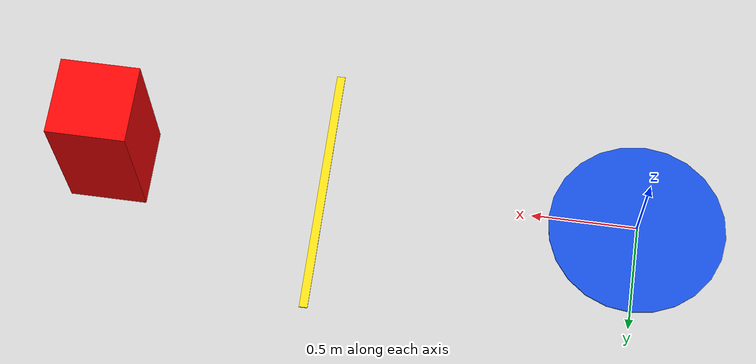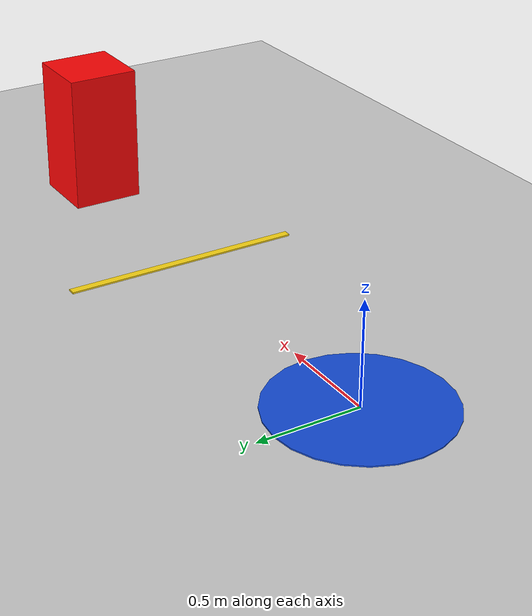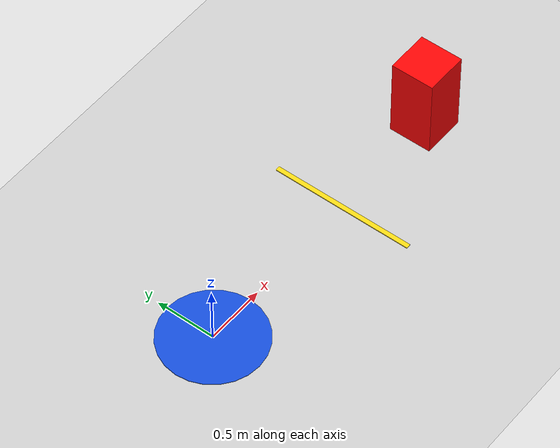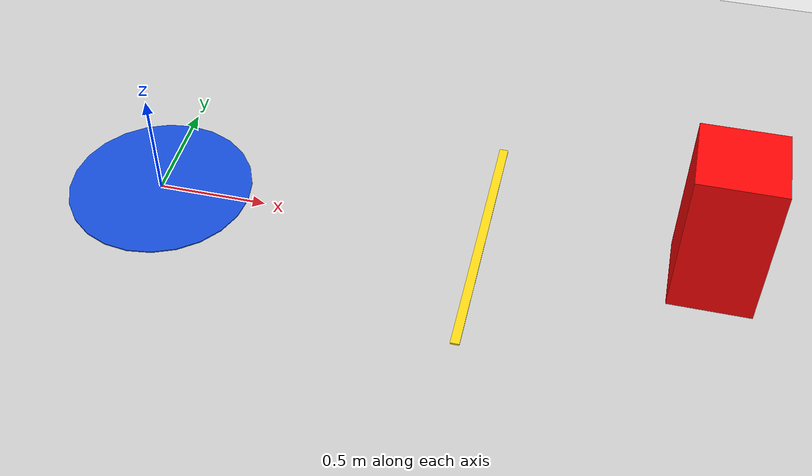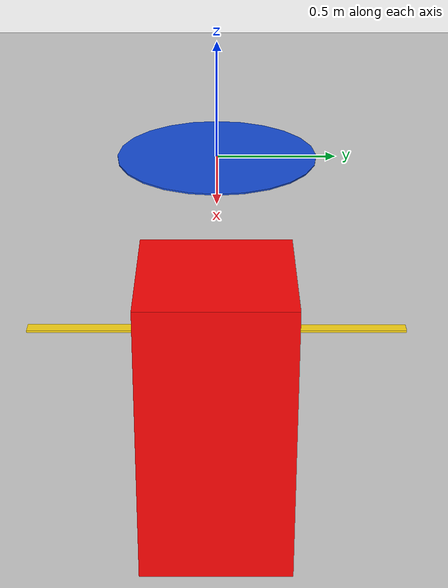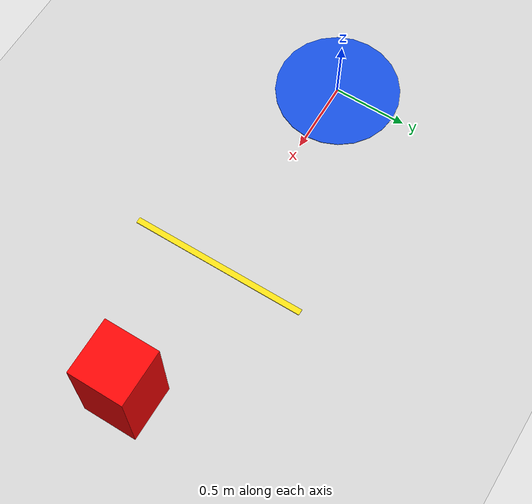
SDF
<?xml version="1.0"?>
<sdf version="1.6">
  <world name="simple_diff_color_follow">
    <include><uri>model://ground_plane</uri></include>
    <include><uri>model://sun</uri></include>

    <!-- Red target seen by the forward-facing fixed camera. Gravity is
         disabled so RViz can move it through /gazebo/set_model_state. -->
    <model name="color_target">
      <static>false</static>
      <pose>2.5 0 0.35 0 0 0</pose>
      <link name="target_link">
        <gravity>false</gravity>
        <inertial>
          <mass>8.0</mass>
          <inertia>
            <ixx>0.352667</ixx><iyy>0.352667</iyy><izz>0.172800</izz>
            <ixy>0</ixy><ixz>0</ixz><iyz>0</iyz>
          </inertia>
        </inertial>
        <collision name="collision">
          <geometry><box><size>0.36 0.36 0.70</size></box></geometry>
        </collision>
        <visual name="visual">
          <geometry><box><size>0.36 0.36 0.70</size></box></geometry>
          <material>
            <ambient>0.85 0.01 0.01 1</ambient>
            <diffuse>1.00 0.02 0.02 1</diffuse>
          </material>
        </visual>
      </link>
    </model>

    <!-- Visual-only start and target-distance markings make the task layout
         obvious in Gazebo without introducing extra laser obstacles. -->
    <model name="start_marker">
      <static>true</static><pose>0 0 0.003 0 0 0</pose>
      <link name="link"><visual name="visual">
        <geometry><cylinder><radius>0.42</radius><length>0.006</length></cylinder></geometry>
        <material><ambient>0.08 0.20 0.55 1</ambient><diffuse>0.08 0.30 0.85 1</diffuse></material>
      </visual></link>
    </model>
    <model name="target_stop_marker">
      <static>true</static><pose>1.5 0 0.004 0 0 0</pose>
      <link name="link"><visual name="visual">
        <geometry><box><size>0.04 1.2 0.008</size></box></geometry>
        <material><ambient>0.95 0.75 0.05 1</ambient><diffuse>1 0.85 0.08 1</diffuse></material>
      </visual></link>
    </model>

    <physics name="color_follow_physics" type="ode">
      <max_step_size>0.001</max_step_size>
      <real_time_update_rate>1000</real_time_update_rate>
      <ode><solver><type>quick</type><iters>100</iters><sor>1.3</sor></solver></ode>
    </physics>
  </world>
</sdf>
